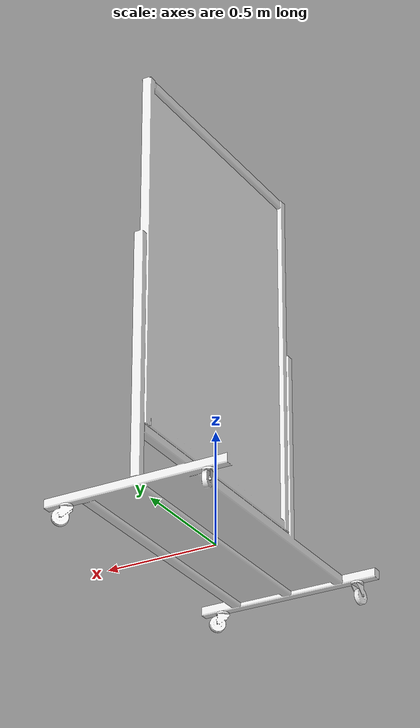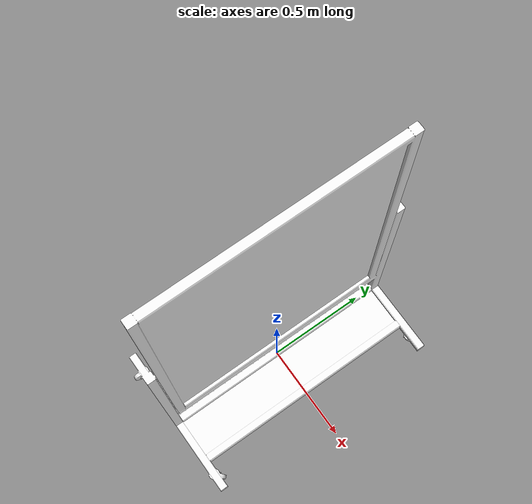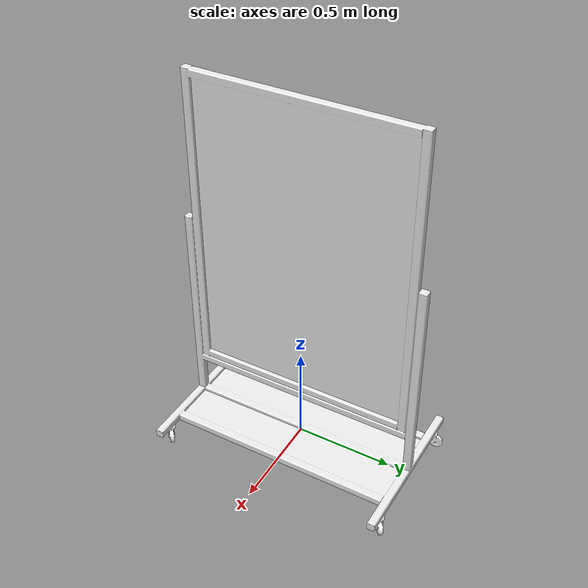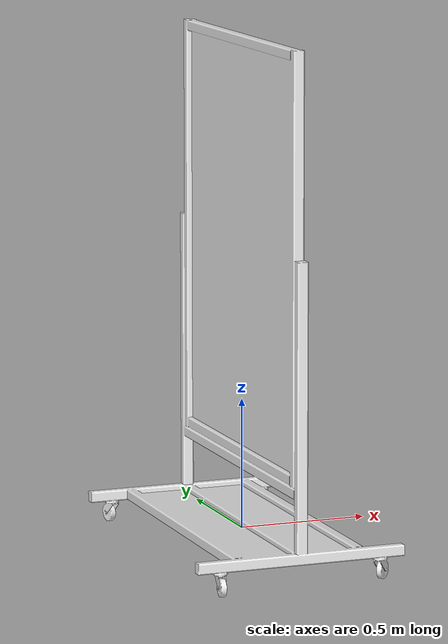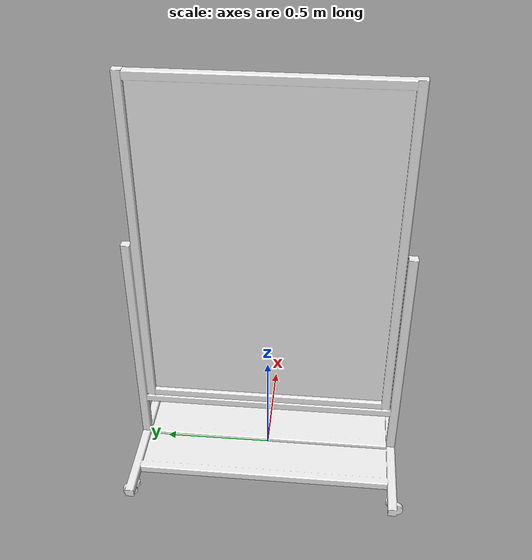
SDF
<?xml version='1.0' ?>
<sdf version='1.6'>
  <model name='white_board'>
    <static>false</static>
    <link name='link'>
      <collision name='collision'>
        <geometry>
          <mesh>
            <scale>0.9 0.9 0.9</scale>
            <uri>model://volta_simulation/models/white_board/meshes/white_board.dae</uri>
          </mesh>
        </geometry>
        <surface>
          <friction>
            <ode>
              <mu>100</mu>
              <mu2>50</mu2>
            </ode>
          </friction>
        </surface>
      </collision>
      <visual name='visual'>
        <geometry>
          <mesh>
            <scale>0.9 0.9 0.9</scale>
            <uri>model://volta_simulation/models/white_board/meshes/white_board.dae</uri>
          </mesh>
        </geometry>
        <material>
          <script>
            <uri>model://volta_simulation/models/white_board/materials/scripts</uri>
            <uri>model://volta_simulation/models/white_board/materials/textures</uri>
            <name>white_board</name>
          </script>
        </material>
      </visual>
      <inertial>
        <pose>0 0 0.59816591 0 0 0</pose>
        <mass>10</mass>
        <inertia>
          <ixx>11.605</ixx>
          <iyy>8.92</iyy>
          <izz>3.125</izz>
          <ixy>0</ixy>
          <ixz>0 </ixz>
          <iyz>0</iyz>
        </inertia>
      </inertial>
    </link>
  </model>
</sdf>
